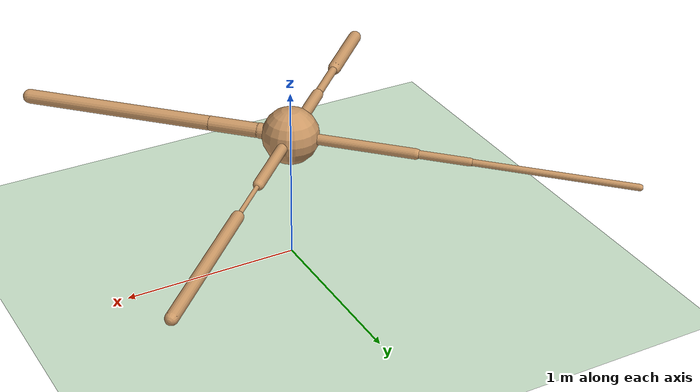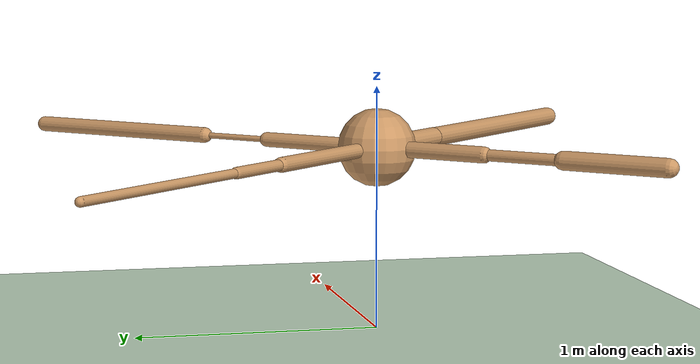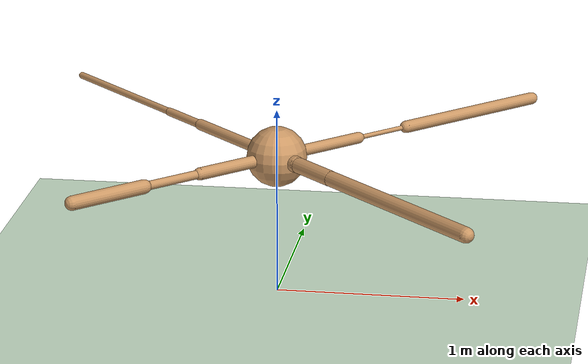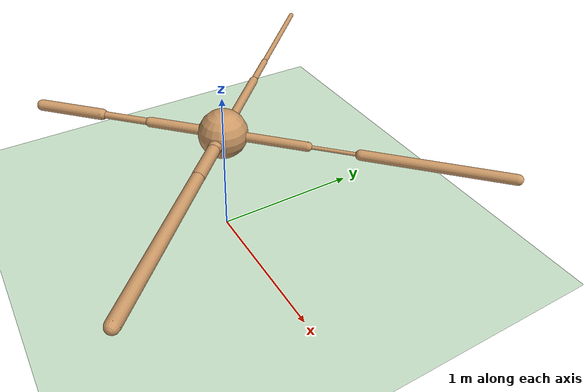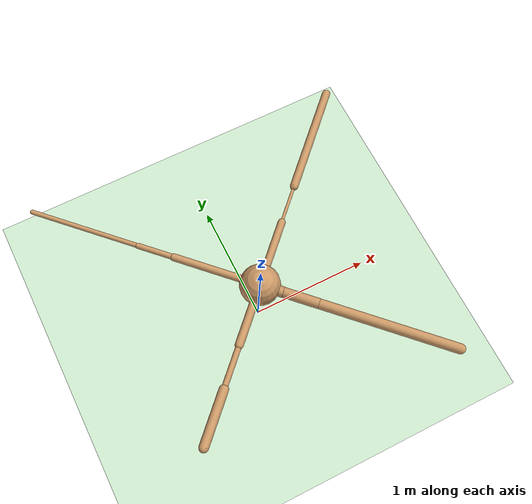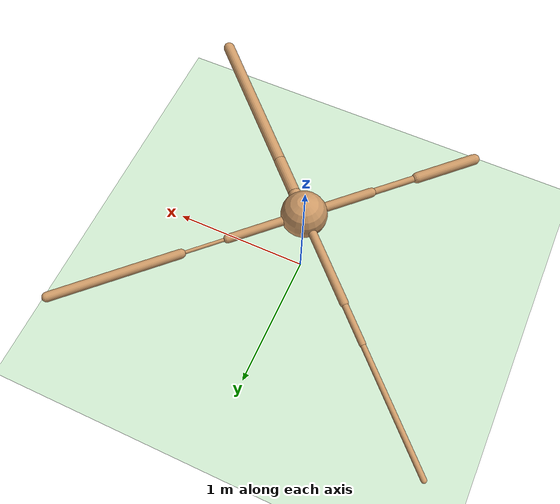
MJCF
<mujoco model="ant">
  <compiler angle="degree" coordinate="local" inertiafromgeom="true" />
  <option integrator="RK4" timestep="0.01" />
  <custom>
    <numeric data="0.0 0.0 0.55 1.0 0.0 0.0 0.0 0.0 1.0 0.0 -1.0 0.0 -1.0 0.0 1.0" name="init_qpos" />
  </custom>
  <default>
    <joint armature="1" damping="1" limited="true" />
    <geom conaffinity="0" condim="3" density="5.0" friction="1 0.5 0.5" margin="0.01" rgba="0.8 0.6 0.4 1" />
  </default>
  <asset>
    <texture builtin="gradient" height="100" rgb1="1 1 1" rgb2="0 0 0" type="skybox" width="100" />
    <texture builtin="flat" height="1278" mark="cross" markrgb="1 1 1" name="texgeom" random="0.01" rgb1="0.8 0.6 0.4" rgb2="0.8 0.6 0.4" type="cube" width="127" />
    <texture builtin="checker" height="100" name="texplane" rgb1="0 0 0" rgb2="0.8 0.8 0.8" type="2d" width="100" />
    <material name="MatPlane" reflectance="0.5" shininess="1" specular="1" texrepeat="60 60" texture="texplane" />
    <material name="geom" texture="texgeom" texuniform="true" />
  </asset>
  <worldbody>
    <light cutoff="100" diffuse="1 1 1" dir="-0 0 -1.3" directional="true" exponent="1" pos="0 0 1.3" specular=".1 .1 .1" />
    <geom conaffinity="1" condim="3" material="MatPlane" name="floor" pos="0 0 0" rgba="0.8 0.9 0.8 1" size="40 40 40" type="plane" />
    <body name="torso" pos="0 0 0.75">
      <camera name="track" mode="trackcom" pos="0 -11 5" xyaxes="1 0 0 0 0.5 1" />
      <geom name="torso_geom" pos="0 0 0" size="0.16014382243156433" type="sphere" />
      <joint armature="0" damping="0" limited="false" margin="0.01" name="root" pos="0 0 0" type="free" />
      <body name="front_left_leg" pos="0 0 0">
        <geom fromto="0 0 0 0.3839804530143738 0.3839804530143738 0" name="aux_1_geom" size="0.03062562830746174" type="capsule" />
        <body name="aux_1" pos="0.3839804530143738 0.3839804530143738 0">
          <joint axis="0 0 1" name="hip_1" pos="0.0 0.0 0.0" range="-30 30" type="hinge" />
          <geom fromto="0 0 0 0.2309390902519226 0.2309390902519226 0" name="left_leg_geom" size="0.012198972515761852" type="capsule" />
          <body name="left_leg_geom_aux" pos="0.2309390902519226 0.2309390902519226 0">
            <joint axis="-1 1 0" name="ankle_1" pos="0.0 0.0 0.0" range="30 70" type="hinge" />
            <geom fromto="0 0 0 0.6346714496612549 0.6346714496612549 0" name="left_ankle_geom" size="0.033233143389225006" type="capsule" />
          </body>
        </body>
      </body>
      <body name="front_right_leg" pos="0 0 0">
        <geom fromto="0 0 0 -0.4944887161254883 0.4944887161254883 0" name="aux_2_geom" size="0.029719317331910133" type="capsule" />
        <body name="aux_2" pos="-0.4944887161254883 0.4944887161254883 0">
          <joint axis="0 0 1" name="hip_2" pos="0.0 0.0 0.0" range="-30 30" type="hinge" />
          <geom fromto="0 0 0 -0.20919594168663025 0.20919594168663025 0" name="right_leg_geom" size="0.02255159616470337" type="capsule" />
          <body name="right_leg_geom_aux" pos="-0.20919594168663025 0.20919594168663025 0">
            <joint axis="1 1 0" name="ankle_2" pos="0.0 0.0 0.0" range="-70 -30" type="hinge" />
            <geom fromto="0 0 0 -0.6275691986083984 0.6275691986083984 0" name="right_ankle_geom" size="0.018398594111204147" type="capsule" />
          </body>
        </body>
      </body>
      <body name="back_leg" pos="0 0 0">
        <geom fromto="0 0 0 -0.3500021696090698 -0.3500021696090698 0" name="aux_3_geom" size="0.03320615366101265" type="capsule" />
        <body name="aux_3" pos="-0.3500021696090698 -0.3500021696090698 0">
          <joint axis="0 0 1" name="hip_3" pos="0.0 0.0 0.0" range="-30 30" type="hinge" />
          <geom fromto="0 0 0 -0.2446104884147644 -0.2446104884147644 0" name="back_leg_geom" size="0.023309867829084396" type="capsule" />
          <body name="back_leg_geom_aux" pos="-0.2446104884147644 -0.2446104884147644 0">
            <joint axis="-1 1 0" name="ankle_3" pos="0.0 0.0 0.0" range="-70 -30" type="hinge" />
            <geom fromto="0 0 0 -0.308890700340271 -0.308890700340271 0" name="third_ankle_geom" size="0.037725403904914856" type="capsule" />
          </body>
        </body>
      </body>
      <body name="right_back_leg" pos="0 0 0">
        <geom fromto="0 0 0 0.1252930760383606 -0.1252930760383606 0" name="aux_4_geom" size="0.043726492673158646" type="capsule" />
        <body name="aux_4" pos="0.1252930760383606 -0.1252930760383606 0">
          <joint axis="0 0 1" name="hip_4" pos="0.0 0.0 0.0" range="-30 30" type="hinge" />
          <geom fromto="0 0 0 0.20348314940929413 -0.20348314940929413 0" name="rightback_leg_geom" size="0.041447900235652924" type="capsule" />
          <body name="rightback_leg_geom_aux" pos="0.20348314940929413 -0.20348314940929413 0">
            <joint axis="1 1 0" name="ankle_4" pos="0.0 0.0 0.0" range="30 70" type="hinge" />
            <geom fromto="0 0 0 0.7712929844856262 -0.7712929844856262 0" name="fourth_ankle_geom" size="0.040555018931627274" type="capsule" />
          </body>
        </body>
      </body>
    </body>
  </worldbody>
  <actuator>
    <motor ctrllimited="true" ctrlrange="-1.0 1.0" joint="hip_4" gear="150" />
    <motor ctrllimited="true" ctrlrange="-1.0 1.0" joint="ankle_4" gear="150" />
    <motor ctrllimited="true" ctrlrange="-1.0 1.0" joint="hip_1" gear="150" />
    <motor ctrllimited="true" ctrlrange="-1.0 1.0" joint="ankle_1" gear="150" />
    <motor ctrllimited="true" ctrlrange="-1.0 1.0" joint="hip_2" gear="150" />
    <motor ctrllimited="true" ctrlrange="-1.0 1.0" joint="ankle_2" gear="150" />
    <motor ctrllimited="true" ctrlrange="-1.0 1.0" joint="hip_3" gear="150" />
    <motor ctrllimited="true" ctrlrange="-1.0 1.0" joint="ankle_3" gear="150" />
  </actuator>
</mujoco>
